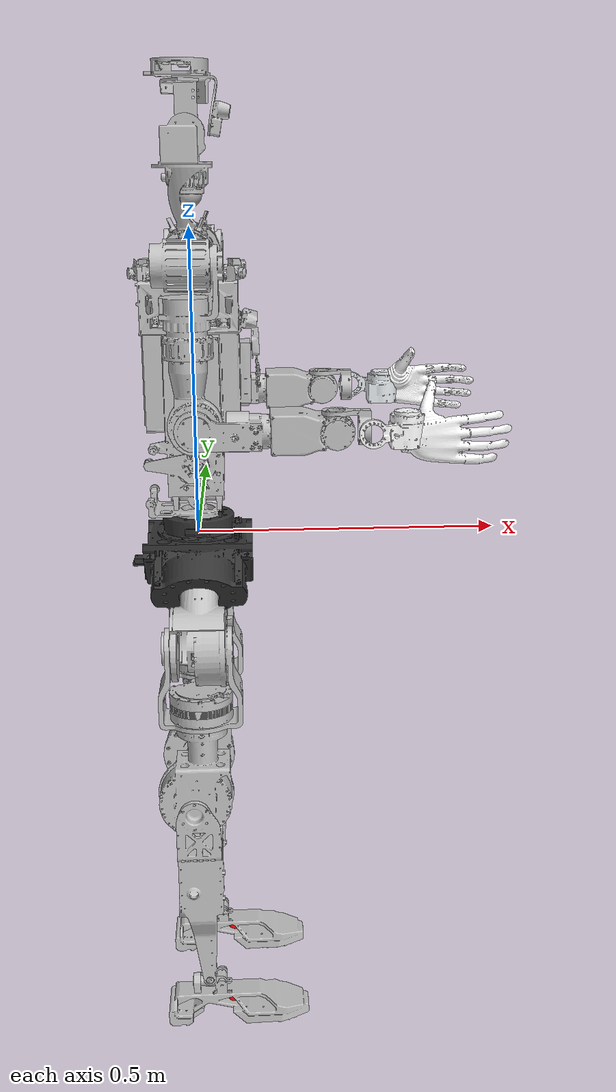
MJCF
<?xml version='1.0' encoding='UTF-8'?>
<mujoco model="v1.1_Whole_u4.0_0304">
  <compiler angle="radian" meshdir="../meshes/" autolimits="true" discardvisual="false"/>
  <default>
    <joint damping="0.5" armature="0.01" frictionloss="0.1"/>
    <geom group="3" contype="1" conaffinity="1"/>
  </default>
  <asset>
    <mesh name="base_link" file="/home/user2/Instinct-mjlab/InstinctMJ/src/instinct_mj/assets/resources/v11/urdf/../meshes/base_link.STL"/>
    <mesh name="left_hip_pitch_link" file="/home/user2/Instinct-mjlab/InstinctMJ/src/instinct_mj/assets/resources/v11/urdf/../meshes/left_hip_pitch_link.STL"/>
    <mesh name="left_hip_roll_link" file="/home/user2/Instinct-mjlab/InstinctMJ/src/instinct_mj/assets/resources/v11/urdf/../meshes/left_hip_roll_link.STL"/>
    <mesh name="left_hip_yaw_link" file="/home/user2/Instinct-mjlab/InstinctMJ/src/instinct_mj/assets/resources/v11/urdf/../meshes/left_hip_yaw_link.STL"/>
    <mesh name="left_knee_link" file="/home/user2/Instinct-mjlab/InstinctMJ/src/instinct_mj/assets/resources/v11/urdf/../meshes/left_knee_link.STL"/>
    <mesh name="left_ankle_pitch_link" file="/home/user2/Instinct-mjlab/InstinctMJ/src/instinct_mj/assets/resources/v11/urdf/../meshes/left_ankle_pitch_link.STL"/>
    <mesh name="left_ankle_roll_link" file="/home/user2/Instinct-mjlab/InstinctMJ/src/instinct_mj/assets/resources/v11/urdf/../meshes/left_ankle_roll_link.STL"/>
    <mesh name="right_hip_pitch_link" file="/home/user2/Instinct-mjlab/InstinctMJ/src/instinct_mj/assets/resources/v11/urdf/../meshes/right_hip_pitch_link.STL"/>
    <mesh name="right_hip_roll_link" file="/home/user2/Instinct-mjlab/InstinctMJ/src/instinct_mj/assets/resources/v11/urdf/../meshes/right_hip_roll_link.STL"/>
    <mesh name="right_hip_yaw_link" file="/home/user2/Instinct-mjlab/InstinctMJ/src/instinct_mj/assets/resources/v11/urdf/../meshes/right_hip_yaw_link.STL"/>
    <mesh name="right_knee_link" file="/home/user2/Instinct-mjlab/InstinctMJ/src/instinct_mj/assets/resources/v11/urdf/../meshes/right_knee_link.STL"/>
    <mesh name="right_ankle_pitch_link" file="/home/user2/Instinct-mjlab/InstinctMJ/src/instinct_mj/assets/resources/v11/urdf/../meshes/right_ankle_pitch_link.STL"/>
    <mesh name="right_ankle_roll_link" file="/home/user2/Instinct-mjlab/InstinctMJ/src/instinct_mj/assets/resources/v11/urdf/../meshes/right_ankle_roll_link.STL"/>
    <mesh name="waist_yaw_link" file="/home/user2/Instinct-mjlab/InstinctMJ/src/instinct_mj/assets/resources/v11/urdf/../meshes/waist_yaw_link.STL"/>
    <mesh name="waist_roll_link" file="/home/user2/Instinct-mjlab/InstinctMJ/src/instinct_mj/assets/resources/v11/urdf/../meshes/waist_roll_link.STL"/>
    <mesh name="waist_pitch_link" file="/home/user2/Instinct-mjlab/InstinctMJ/src/instinct_mj/assets/resources/v11/urdf/../meshes/waist_pitch_link.STL"/>
    <mesh name="head_yaw_link" file="/home/user2/Instinct-mjlab/InstinctMJ/src/instinct_mj/assets/resources/v11/urdf/../meshes/head_yaw_link.STL"/>
    <mesh name="head_pitch_link" file="/home/user2/Instinct-mjlab/InstinctMJ/src/instinct_mj/assets/resources/v11/urdf/../meshes/head_pitch_link.STL"/>
    <mesh name="left_shoulder_pitch_link" file="/home/user2/Instinct-mjlab/InstinctMJ/src/instinct_mj/assets/resources/v11/urdf/../meshes/left_shoulder_pitch_link.STL"/>
    <mesh name="left_shoulder_roll_link" file="/home/user2/Instinct-mjlab/InstinctMJ/src/instinct_mj/assets/resources/v11/urdf/../meshes/left_shoulder_roll_link.STL"/>
    <mesh name="left_shoulder_yaw_link" file="/home/user2/Instinct-mjlab/InstinctMJ/src/instinct_mj/assets/resources/v11/urdf/../meshes/left_shoulder_yaw_link.STL"/>
    <mesh name="left_elbow_link" file="/home/user2/Instinct-mjlab/InstinctMJ/src/instinct_mj/assets/resources/v11/urdf/../meshes/left_elbow_link.STL"/>
    <mesh name="left_wrist_roll_link" file="/home/user2/Instinct-mjlab/InstinctMJ/src/instinct_mj/assets/resources/v11/urdf/../meshes/left_wrist_roll_link.STL"/>
    <mesh name="left_wrist_yaw_link" file="/home/user2/Instinct-mjlab/InstinctMJ/src/instinct_mj/assets/resources/v11/urdf/../meshes/left_wrist_yaw_link.STL"/>
    <mesh name="left_wrist_pitch_link" file="/home/user2/Instinct-mjlab/InstinctMJ/src/instinct_mj/assets/resources/v11/urdf/../meshes/left_wrist_pitch_link.STL"/>
    <mesh name="left_hand_link" file="/home/user2/Instinct-mjlab/InstinctMJ/src/instinct_mj/assets/resources/v11/urdf/../meshes/left_hand_link.STL"/>
    <mesh name="right_shoulder_pitch_link" file="/home/user2/Instinct-mjlab/InstinctMJ/src/instinct_mj/assets/resources/v11/urdf/../meshes/right_shoulder_pitch_link.STL"/>
    <mesh name="right_shoulder_roll_link" file="/home/user2/Instinct-mjlab/InstinctMJ/src/instinct_mj/assets/resources/v11/urdf/../meshes/right_shoulder_roll_link.STL"/>
    <mesh name="right_shoulder_yaw_link" file="/home/user2/Instinct-mjlab/InstinctMJ/src/instinct_mj/assets/resources/v11/urdf/../meshes/right_shoulder_yaw_link.STL"/>
    <mesh name="right_elbow_link" file="/home/user2/Instinct-mjlab/InstinctMJ/src/instinct_mj/assets/resources/v11/urdf/../meshes/right_elbow_link.STL"/>
    <mesh name="right_wrist_roll_link" file="/home/user2/Instinct-mjlab/InstinctMJ/src/instinct_mj/assets/resources/v11/urdf/../meshes/right_wrist_roll_link.STL"/>
    <mesh name="right_wrist_yaw_link" file="/home/user2/Instinct-mjlab/InstinctMJ/src/instinct_mj/assets/resources/v11/urdf/../meshes/right_wrist_yaw_link.STL"/>
    <mesh name="right_wrist_pitch_link" file="/home/user2/Instinct-mjlab/InstinctMJ/src/instinct_mj/assets/resources/v11/urdf/../meshes/right_wrist_pitch_link.STL"/>
    <mesh name="right_hand_link" file="/home/user2/Instinct-mjlab/InstinctMJ/src/instinct_mj/assets/resources/v11/urdf/../meshes/right_hand_link.STL"/>
  </asset>
  <worldbody>
    <body name="base_link">
      <inertial pos="-0.000155 2.8e-05 -0.049334" quat="0.505449 0.504747 -0.495115 0.494584" mass="5.77559" diaginertia="0.0309649 0.0287201 0.019774"/>
      <joint name="floating_base_joint" type="free" limited="false" actuatorfrclimited="false"/>
      <geom type="mesh" contype="0" conaffinity="0" group="1" density="0" rgba="0.2 0.2 0.2 1" mesh="base_link"/>
      <geom size="0.085" pos="0 0 -0.07" rgba="0.2 0.2 0.2 1"/>
      <site name="imu" size="0.01" pos="0 0 0"/>
      <!-- harness cameras (body-fixed, follow robot) -->
      <camera name="front" pos="3 0 0.2" xyaxes="0 1 0 0 0 1" />
      <camera name="side"  pos="0 3 0.2" xyaxes="-1 0 0 0 0 1" />
      <camera name="top"   pos="0 0 4.2" xyaxes="1 0 0 0 1 0" />
      <body name="left_hip_pitch_link" pos="0 0.11619 -0.12455" quat="0.923879 -0.382684 0 0">
        <inertial pos="0.003459 0.021151 -0.028205" quat="0.490041 0.865639 0.102286 0.00818255" mass="2.31159" diaginertia="0.00539473 0.00466954 0.00409573"/>
        <joint name="left_hip_pitch_joint" pos="0 0 0" axis="0 1 0" range="-2.618 2.618" actuatorfrcrange="-150 150"/>
        <geom type="mesh" contype="0" conaffinity="0" group="1" density="0" rgba="0.75294 0.75294 0.75294 1" mesh="left_hip_pitch_link"/>
        <body name="left_hip_roll_link" pos="-0.001 0.03 -0.03" quat="0.923879 0.382684 0 0">
          <inertial pos="0.001718 2.7e-05 -0.084185" quat="0.302919 0.638937 0.638937 0.302919" mass="1.4811" diaginertia="0.004583 0.00342042 0.00297758"/>
          <joint name="left_hip_roll_joint" pos="0 0 0" axis="1 0 0" range="-0.7854 2.3563" actuatorfrcrange="-150 150"/>
          <geom type="mesh" contype="0" conaffinity="0" group="1" density="0" rgba="0.752941 0.752941 0.752941 1" mesh="left_hip_roll_link"/>
          <body name="left_hip_yaw_link" pos="0 0 -0.13">
            <inertial pos="-0.010515 -0.008686 -0.118125" quat="0.768791 -0.00106581 -0.0794954 0.634539" mass="2.40368" diaginertia="0.0105257 0.00964942 0.00307093"/>
            <joint name="left_hip_yaw_joint" pos="0 0 0" axis="0 0 1" range="-2.0944 2.0944" actuatorfrcrange="-90 90"/>
            <geom type="mesh" contype="0" conaffinity="0" group="1" density="0" rgba="0.752941 0.752941 0.752941 1" mesh="left_hip_yaw_link"/>
            <geom size="0.05 0.05" pos="0 0 0.05" type="capsule" rgba="0.752941 0.752941 0.752941 1"/>
            <body name="left_knee_link" pos="-0.015 0 -0.151">
              <inertial pos="0.004171 0.00067 -0.136787" quat="0.999909 0.00620724 0.0106815 -0.00541722" mass="1.79438" diaginertia="0.0104609 0.00988819 0.00191487"/>
              <joint name="left_knee_joint" pos="0 0 0" axis="0 1 0" range="-0.0873 2.0944" actuatorfrcrange="-150 150"/>
              <geom type="mesh" contype="0" conaffinity="0" group="1" density="0" rgba="0.752941 0.752941 0.752941 1" mesh="left_knee_link"/>
              <geom size="0.04 0.125" pos="0 0 -0.15" type="capsule" rgba="0.752941 0.752941 0.752941 1"/>
              <body name="left_ankle_pitch_link" pos="0.015 0.0005 -0.339">
                <inertial pos="-0.004439 8e-06 -0.007488" quat="0 0.83147 0 0.55557" mass="0.089167" diaginertia="2.22426e-05 1.9e-05 1.37574e-05"/>
                <joint name="left_ankle_pitch_joint" pos="0 0 0" axis="0 1 0" range="-0.9599 0.2618" actuatorfrcrange="-54 54"/>
                <geom type="mesh" contype="0" conaffinity="0" group="1" density="0" rgba="0.752941 0.752941 0.752941 1" mesh="left_ankle_pitch_link"/>
                <body name="left_ankle_roll_link" pos="0 0 -0.015">
                  <inertial pos="0.044355 0 -0.035553" quat="0 0.678893 0 0.734237" mass="0.881546" diaginertia="0.0045374 0.004457 0.000548603"/>
                  <joint name="left_ankle_roll_joint" pos="0 0 0" axis="1 0 0" range="-0.1745 0.1745" actuatorfrcrange="-54 54"/>
                  <geom type="mesh" contype="0" conaffinity="0" group="1" density="0" rgba="0.752941 0.752941 0.752941 1" mesh="left_ankle_roll_link"/>
                  <geom name="left_foot1_collision" size="0.012 0.08" pos="0.04 -0.03 -0.055" quat="0.710914 0 0.703279 0" type="capsule" priority="1" friction="0.6 0.005 0.0001" rgba="0.2 0.2 0.2 1"/>
                  <geom name="left_foot2_collision" size="0.012 0.1" pos="0.05 -0.02 -0.055" quat="0.710914 0 0.703279 0" type="capsule" priority="1" friction="0.6 0.005 0.0001" rgba="0.2 0.2 0.2 1"/>
                  <geom name="left_foot3_collision" size="0.012 0.11" pos="0.054 -0.01 -0.055" quat="0.710914 0 0.703279 0" type="capsule" priority="1" friction="0.6 0.005 0.0001" rgba="0.2 0.2 0.2 1"/>
                  <geom name="left_foot4_collision" size="0.012 0.11" pos="0.054 0 -0.055" quat="0.710914 0 0.703279 0" type="capsule" priority="1" friction="0.6 0.005 0.0001" rgba="0.2 0.2 0.2 1"/>
                  <geom name="left_foot5_collision" size="0.012 0.11" pos="0.054 0.01 -0.055" quat="0.710914 0 0.703279 0" type="capsule" priority="1" friction="0.6 0.005 0.0001" rgba="0.2 0.2 0.2 1"/>
                  <geom name="left_foot6_collision" size="0.012 0.1" pos="0.05 0.02 -0.055" quat="0.710914 0 0.703279 0" type="capsule" priority="1" friction="0.6 0.005 0.0001" rgba="0.2 0.2 0.2 1"/>
                  <geom name="left_foot7_collision" size="0.012 0.08" pos="0.04 0.03 -0.055" quat="0.710914 0 0.703279 0" type="capsule" priority="1" friction="0.6 0.005 0.0001" rgba="0.2 0.2 0.2 1"/>
                  <body name="LL_FOOT" pos="0.04 0 -0.037">
                    <inertial pos="0 0 0" mass="1e-09" diaginertia="0 0 0"/>
                  </body>
                  <site name="left_foot" pos="0.04 0 -0.037" size="0.01" rgba="1 0 0 1"/>
                </body>
              </body>
            </body>
          </body>
        </body>
      </body>
      <body name="right_hip_pitch_link" pos="0 -0.11619 -0.12455" quat="0.923879 0.382684 0 0">
        <inertial pos="0.00371 -0.021009 -0.028285" quat="0.871018 0.48043 -0.00149133 -0.102528" mass="2.32505" diaginertia="0.00543281 0.00471116 0.00414603"/>
        <joint name="right_hip_pitch_joint" pos="0 0 0" axis="0 1 0" range="-2.618 2.618" actuatorfrcrange="-150 150"/>
        <geom type="mesh" contype="0" conaffinity="0" group="1" density="0" rgba="0.752941 0.752941 0.752941 1" mesh="right_hip_pitch_link"/>
        <body name="right_hip_roll_link" pos="-0.001 -0.03 -0.03" quat="0.923879 -0.382684 0 0">
          <inertial pos="0.001726 -4e-06 -0.084185" quat="0.308158 0.639783 0.633678 0.306869" mass="1.4811" diaginertia="0.0045961 0.00341524 0.00296965"/>
          <joint name="right_hip_roll_joint" pos="0 0 0" axis="1 0 0" range="-2.3563 0.7854" actuatorfrcrange="-150 150"/>
          <geom type="mesh" contype="0" conaffinity="0" group="1" density="0" rgba="0.752941 0.752941 0.752941 1" mesh="right_hip_roll_link"/>
          <body name="right_hip_yaw_link" pos="0 0 -0.13">
            <inertial pos="-0.010501 0.008686 -0.118134" quat="0.634352 -0.0794556 -0.00101217 0.768949" mass="2.40369" diaginertia="0.0105269 0.00964795 0.00307314"/>
            <joint name="right_hip_yaw_joint" pos="0 0 0" axis="0 0 1" range="-2.0944 2.0944" actuatorfrcrange="-150 150"/>
            <geom type="mesh" contype="0" conaffinity="0" group="1" density="0" rgba="0.752941 0.752941 0.752941 1" mesh="right_hip_yaw_link"/>
            <geom size="0.05 0.05" pos="0 0 0.05" type="capsule" rgba="0.752941 0.752941 0.752941 1"/>
            <body name="right_knee_link" pos="-0.015 0 -0.151">
              <inertial pos="0.004171 -0.000665 -0.13679" quat="0.999908 -0.00626714 0.0106807 0.00545526" mass="1.79439" diaginertia="0.0104609 0.00989021 0.00191385"/>
              <joint name="right_knee_joint" pos="0 0 0" axis="0 1 0" range="-0.0873 2.0944" actuatorfrcrange="-150 150"/>
              <geom type="mesh" contype="0" conaffinity="0" group="1" density="0" rgba="0.752941 0.752941 0.752941 1" mesh="right_knee_link"/>
              <geom size="0.04 0.125" pos="0 0 -0.15" type="capsule" rgba="0.752941 0.752941 0.752941 1"/>
              <body name="right_ankle_pitch_link" pos="0.015 -0.0005 -0.339">
                <inertial pos="-0.004439 -8e-06 -0.007488" quat="0 0.83147 0 0.55557" mass="0.089167" diaginertia="2.22426e-05 1.9e-05 1.37574e-05"/>
                <joint name="right_ankle_pitch_joint" pos="0 0 0" axis="0 1 0" range="-0.9599 0.2618" actuatorfrcrange="-54 54"/>
                <geom type="mesh" contype="0" conaffinity="0" group="1" density="0" rgba="0.752941 0.752941 0.752941 1" mesh="right_ankle_pitch_link"/>
                <body name="right_ankle_roll_link" pos="0 0 -0.015">
                  <inertial pos="0.044597 0 -0.035822" quat="0 0.679635 0 0.733551" mass="0.874931" diaginertia="0.00452915 0.004442 0.000540846"/>
                  <joint name="right_ankle_roll_joint" pos="0 0 0" axis="1 0 0" range="-0.1745 0.1745" actuatorfrcrange="-54 54"/>
                  <geom type="mesh" contype="0" conaffinity="0" group="1" density="0" rgba="0.752941 0.752941 0.752941 1" mesh="right_ankle_roll_link"/>
                  <geom name="right_foot1_collision" size="0.012 0.08" pos="0.04 -0.03 -0.055" quat="0.710914 0 0.703279 0" type="capsule" priority="1" friction="0.6 0.005 0.0001" rgba="0.2 0.2 0.2 1"/>
                  <geom name="right_foot2_collision" size="0.012 0.1" pos="0.05 -0.02 -0.055" quat="0.710914 0 0.703279 0" type="capsule" priority="1" friction="0.6 0.005 0.0001" rgba="0.2 0.2 0.2 1"/>
                  <geom name="right_foot3_collision" size="0.012 0.11" pos="0.054 -0.01 -0.055" quat="0.710914 0 0.703279 0" type="capsule" priority="1" friction="0.6 0.005 0.0001" rgba="0.2 0.2 0.2 1"/>
                  <geom name="right_foot4_collision" size="0.012 0.11" pos="0.054 0 -0.055" quat="0.710914 0 0.703279 0" type="capsule" priority="1" friction="0.6 0.005 0.0001" rgba="0.2 0.2 0.2 1"/>
                  <geom name="right_foot5_collision" size="0.012 0.11" pos="0.054 0.01 -0.055" quat="0.710914 0 0.703279 0" type="capsule" priority="1" friction="0.6 0.005 0.0001" rgba="0.2 0.2 0.2 1"/>
                  <geom name="right_foot6_collision" size="0.012 0.1" pos="0.05 0.02 -0.055" quat="0.710914 0 0.703279 0" type="capsule" priority="1" friction="0.6 0.005 0.0001" rgba="0.2 0.2 0.2 1"/>
                  <geom name="right_foot7_collision" size="0.012 0.08" pos="0.04 0.03 -0.055" quat="0.710914 0 0.703279 0" type="capsule" priority="1" friction="0.6 0.005 0.0001" rgba="0.2 0.2 0.2 1"/>
                  <body name="LR_FOOT" pos="0.04 0 -0.037">
                    <inertial pos="0 0 0" mass="1e-09" diaginertia="0 0 0"/>
                  </body>
                  <site name="right_foot" pos="0.04 0 -0.037" size="0.01" rgba="1 0 0 1"/>
                </body>
              </body>
            </body>
          </body>
        </body>
      </body>
      <body name="waist_yaw_link">
        <inertial pos="-0.023393 1e-06 0.041219" quat="0 0.677318 0 0.73569" mass="0.2361" diaginertia="0.000486235 0.000381 0.000157765"/>
        <joint name="waist_yaw_joint" pos="0 0 0" axis="0 0 1" range="-1.5708 1.5708" actuatorfrcrange="-90 90"/>
        <geom type="mesh" contype="0" conaffinity="0" group="1" density="0" rgba="0.752941 0.752941 0.752941 1" mesh="waist_yaw_link"/>
        <body name="waist_roll_link" pos="0 0 0.0615">
          <inertial pos="0 0 -1.7e-05" quat="0 0.707107 0 0.707107" mass="0.044979" diaginertia="1.8e-05 1.3e-05 6e-06"/>
          <joint name="waist_roll_joint" pos="0 0 0" axis="1 0 0" range="-0.1745 0.1745" actuatorfrcrange="-90 90"/>
          <geom type="mesh" contype="0" conaffinity="0" group="1" density="0" rgba="0.752941 0.752941 0.752941 1" mesh="waist_roll_link"/>
          <body name="waist_pitch_link">
            <inertial pos="-0.006743 0.000129 0.239122" quat="0.99984 -0.00138923 -0.0177964 -0.000710682" mass="13.9753" diaginertia="0.216592 0.185444 0.0781879"/>
            <joint name="waist_pitch_joint" pos="0 0 0" axis="0 1 0" range="-0.3491 0.6981" actuatorfrcrange="-90 90"/>
            <geom type="mesh" contype="0" conaffinity="0" group="1" density="0" rgba="0.752941 0.752941 0.752941 1" mesh="waist_pitch_link"/>
            <geom size="0.08 0.0375" pos="0.005 0 0.35" quat="0.707105 0.707108 0 0" type="capsule" rgba="0.752941 0.752941 0.752941 1"/>
            <geom size="0.08 0.028" pos="0.005 0 0.2" quat="0.707105 0.707108 0 0" type="capsule" rgba="0.752941 0.752941 0.752941 1"/>
            <geom size="0.06 0.02" pos="0.005 0 0.06" quat="0.707105 0.707108 0 0" type="capsule" rgba="0.752941 0.752941 0.752941 1"/>
            <body name="head_yaw_link" pos="0 0 0.4375">
              <inertial pos="-0.001469 -0.001706 0.101301" quat="0.998467 -0.00882478 -0.00428167 0.0544812" mass="0.879937" diaginertia="0.00201828 0.00183516 0.00071856"/>
              <geom type="mesh" contype="0" conaffinity="0" group="1" density="0" rgba="0.752941 0.752941 0.752941 1" mesh="head_yaw_link"/>
              <geom size="0.07" pos="0 0 0.15" rgba="0.752941 0.752941 0.752941 1"/>
              <body name="head_pitch_link" pos="0 0 0.142">
                <inertial pos="0.024719 0.005163 0.054194" quat="0.275074 0.367039 0.169088 0.872368" mass="0.311827" diaginertia="0.000742282 0.000655865 0.000263853"/>
                <geom type="mesh" contype="0" conaffinity="0" group="1" density="0" rgba="0.752941 0.752941 0.752941 1" mesh="head_pitch_link"/>
              </body>
            </body>
            <body name="left_shoulder_pitch_link" pos="0 0.1446 0.3935">
              <inertial pos="0.005441 0.044691 -9e-06" quat="0.435162 0.557345 -0.435162 0.557345" mass="0.82606" diaginertia="0.000626 0.0006 0.000583"/>
              <joint name="left_shoulder_pitch_joint" pos="0 0 0" axis="0 1 0" range="-2.618 2.618" actuatorfrcrange="-80 80"/>
              <geom type="mesh" contype="0" conaffinity="0" group="1" density="0" rgba="0.752941 0.752941 0.752941 1" mesh="left_shoulder_pitch_link"/>
              <body name="left_shoulder_roll_link" pos="0 0.047 0">
                <inertial pos="0.004638 5.8e-05 -0.095341" quat="0.635553 -0.168427 -0.145122 0.739354" mass="0.919601" diaginertia="0.00159214 0.00158606 0.000733801"/>
                <joint name="left_shoulder_roll_joint" pos="0 0 0" axis="1 0 0" range="-0.0873 3.2289" actuatorfrcrange="-80 80"/>
                <geom type="mesh" contype="0" conaffinity="0" group="1" density="0" rgba="0.752941 0.752941 0.752941 1" mesh="left_shoulder_roll_link"/>
                <body name="left_shoulder_yaw_link" pos="-0.00072034 0 -0.1346">
                  <inertial pos="0.006217 0.007462 -0.090852" quat="0.819073 -0.0155607 0.0734932 0.56875" mass="1.02565" diaginertia="0.00155801 0.00150183 0.000799156"/>
                  <joint name="left_shoulder_yaw_joint" pos="0 0 0" axis="0 0 1" range="-2.618 2.618" actuatorfrcrange="-80 80"/>
                  <geom type="mesh" contype="0" conaffinity="0" group="1" density="0" rgba="0.752941 0.752941 0.752941 1" mesh="left_shoulder_yaw_link"/>
                  <geom size="0.035 0.075" type="capsule" rgba="0.752941 0.752941 0.752941 1"/>
                  <body name="left_elbow_link" pos="0.0075 0 -0.1019">
                    <inertial pos="0.08001 0.011386 -0.008325" quat="-0.0715389 0.633022 0.285541 0.715983" mass="0.57411" diaginertia="0.000881445 0.000795651 0.000284904"/>
                    <joint name="left_elbow_joint" pos="0 0 0" axis="0 1 0" range="-0.6981 3.3161" actuatorfrcrange="-80 80"/>
                    <geom type="mesh" contype="0" conaffinity="0" group="1" density="0" rgba="0.752941 0.752941 0.752941 1" mesh="left_elbow_link"/>
                    <geom size="0.035 0.075" pos="0.1 0 0" quat="0.707388 0 0.706825 0" type="capsule" rgba="0.752941 0.752941 0.752941 1"/>
                    <body name="left_wrist_roll_link" pos="0.1 0.0019 -0.009">
                      <inertial pos="0.084999 -4.2e-05 -0.005022" quat="0.534353 0.462261 0.462063 0.535986" mass="0.699715" diaginertia="0.001204 0.00112857 0.000441426"/>
                      <joint name="left_wrist_roll_joint" pos="0 0 0" axis="1 0 0" range="-2.618 2.618" actuatorfrcrange="-11.5 11.5"/>
                      <geom type="mesh" contype="0" conaffinity="0" group="1" density="0" rgba="0.752941 0.752941 0.752941 1" mesh="left_wrist_roll_link"/>
                      <body name="left_wrist_yaw_link" pos="0.1135 0 0">
                        <inertial pos="0.051009 0.006165 -0.002321" quat="0.211869 0.806792 0.349015 0.427068" mass="0.404102" diaginertia="0.000221574 0.000202653 0.000134773"/>
                        <joint name="left_wrist_yaw_joint" pos="0 0 0" axis="0 0 1" range="-1.6581 1.5708" actuatorfrcrange="-11.5 11.5"/>
                        <geom type="mesh" contype="0" conaffinity="0" group="1" density="0" rgba="0.752941 0.752941 0.752941 1" mesh="left_wrist_yaw_link"/>
                        <geom size="0.05 0.02" pos="0.09 0 0" quat="0.707388 0 0.706825 0" type="capsule" rgba="0.752941 0.752941 0.752941 1"/>
                        <body name="left_wrist_pitch_link" pos="0.054 0 0">
                          <inertial pos="0.03112 0.014397 0.000457" quat="0.706925 0.706925 -0.0160252 -0.0160252" mass="0.05282" diaginertia="0.000106 0.000106 0.000106"/>
                          <joint name="left_wrist_pitch_joint" pos="0 0 0" axis="0 1 0" range="-1.6581 1.4835" actuatorfrcrange="-11.5 11.5"/>
                          <geom type="mesh" contype="0" conaffinity="0" group="1" density="0" rgba="0.898039 0.917647 0.929412 1" mesh="left_wrist_pitch_link"/>
                          <body name="left_hand_link" pos="0.052 0 0.001">
                            <inertial pos="0.068357 -0.00813 0.010003" quat="0.686409 0.317601 0.557668 0.342022" mass="0.5" diaginertia="0.00154314 0.00114069 0.000539169"/>
                            <geom type="mesh" contype="0" conaffinity="0" group="1" density="0" rgba="1 1 1 1" mesh="left_hand_link"/>
                          </body>
                        </body>
                      </body>
                    </body>
                  </body>
                </body>
              </body>
            </body>
            <body name="right_shoulder_pitch_link" pos="0 -0.1446 0.3935">
              <inertial pos="0.00524 -0.044604 0" quat="0.540044 0.456457 -0.540044 0.456457" mass="0.823511" diaginertia="0.000621 0.000600676 0.000576324"/>
              <joint name="right_shoulder_pitch_joint" pos="0 0 0" axis="0 1 0" range="-2.618 2.618" actuatorfrcrange="-80 80"/>
              <geom type="mesh" contype="0" conaffinity="0" group="1" density="0" rgba="0.752941 0.752941 0.752941 1" mesh="right_shoulder_pitch_link"/>
              <body name="right_shoulder_roll_link" pos="0 -0.047 0">
                <inertial pos="0.004823 -6.6e-05 -0.094934" quat="0.689588 -0.156423 -0.156423 0.689588" mass="0.922881" diaginertia="0.00164 0.00163588 0.000734123"/>
                <joint name="right_shoulder_roll_joint" pos="0 0 0" axis="1 0 0" range="-3.2289 0.0873" actuatorfrcrange="-80 80"/>
                <geom type="mesh" contype="0" conaffinity="0" group="1" density="0" rgba="0.752941 0.752941 0.752941 1" mesh="right_shoulder_roll_link"/>
                <body name="right_shoulder_yaw_link" pos="-0.00072034 0 -0.1346">
                  <inertial pos="0.006215 -0.007444 -0.090877" quat="0.574371 0.0733484 -0.0145216 0.815173" mass="1.0263" diaginertia="0.00155813 0.00150352 0.000800349"/>
                  <joint name="right_shoulder_yaw_joint" pos="0 0 0" axis="0 0 1" range="-2.618 2.618" actuatorfrcrange="-80 80"/>
                  <geom type="mesh" contype="0" conaffinity="0" group="1" density="0" rgba="0.752941 0.752941 0.752941 1" mesh="right_shoulder_yaw_link"/>
                  <geom size="0.035 0.075" type="capsule" rgba="0.752941 0.752941 0.752941 1"/>
                  <body name="right_elbow_link" pos="0.0075 0 -0.1019">
                    <inertial pos="0.07929 -0.011745 -0.008251" quat="0.0594802 0.629275 -0.29337 0.717223" mass="0.579271" diaginertia="0.000926527 0.000837115 0.000286359"/>
                    <joint name="right_elbow_joint" pos="0 0 0" axis="0 1 0" range="-0.6981 3.3161" actuatorfrcrange="-80 80"/>
                    <geom type="mesh" contype="0" conaffinity="0" group="1" density="0" rgba="0.752941 0.752941 0.752941 1" mesh="right_elbow_link"/>
                    <geom size="0.035 0.075" pos="0.1 0 0" quat="0.707388 0 0.706825 0" type="capsule" rgba="0.752941 0.752941 0.752941 1"/>
                    <body name="right_wrist_roll_link" pos="0.1 -0.0019 -0.009">
                      <inertial pos="0.085003 4.9e-05 -0.00502" quat="0.536357 0.461633 0.461831 0.534722" mass="0.700041" diaginertia="0.001205 0.00112888 0.000442115"/>
                      <joint name="right_wrist_roll_joint" pos="0 0 0" axis="1 0 0" range="-2.618 2.618" actuatorfrcrange="-11.5 11.5"/>
                      <geom type="mesh" contype="0" conaffinity="0" group="1" density="0" rgba="0.752941 0.752941 0.752941 1" mesh="right_wrist_roll_link"/>
                      <body name="right_wrist_yaw_link" pos="0.1135 0 0">
                        <inertial pos="0.051094 -0.006168 -0.002269" quat="0.421711 0.367386 0.800912 0.213842" mass="0.404099" diaginertia="0.000219454 0.000201397 0.000135149"/>
                        <joint name="right_wrist_yaw_joint" pos="0 0 0" axis="0 0 1" range="-1.5708 1.6581" actuatorfrcrange="-11.5 11.5"/>
                        <geom pos="0 0 0" type="mesh" contype="0" conaffinity="0" group="1" density="0" rgba="0.752941 0.752941 0.752941 1" mesh="right_wrist_yaw_link"/>
                        <geom size="0.05 0.02" pos="0.09 0 0" quat="0.707388 0 0.706825 0" type="capsule" rgba="0.752941 0.752941 0.752941 1"/>
                        <body name="right_wrist_pitch_link" pos="0.054 0 0">
                          <inertial pos="0.03112 -0.014397 0.000457" quat="0.230106 0.668619 -0.230106 0.668619" mass="0.05282" diaginertia="3.8e-05 3.78078e-05 1.71922e-05"/>
                          <joint name="right_wrist_pitch_joint" pos="0 0 0" axis="0 1 0" range="-1.6581 1.4835" actuatorfrcrange="-11.5 11.5"/>
                          <geom type="mesh" contype="0" conaffinity="0" group="1" density="0" rgba="1 1 1 1" mesh="right_wrist_pitch_link"/>
                          <body name="right_hand_link" pos="0.054287 0 -0.01594">
                            <inertial pos="0.066084 0.008134 0.026947" quat="0.342022 0.557668 0.317601 0.686409" mass="0.5" diaginertia="0.00154314 0.00114069 0.000539169"/>
                            <geom type="mesh" contype="0" conaffinity="0" group="1" density="0" rgba="1 1 1 1" mesh="right_hand_link"/>
                          </body>
                        </body>
                      </body>
                    </body>
                  </body>
                </body>
              </body>
            </body>
          </body>
        </body>
      </body>
      <body name="imu_link" pos="-0.09835 0 -0.052"/>
    </body>
  </worldbody>
  <contact>
    <exclude body1="left_elbow_link" body2="left_wrist_pitch_link"/>
    <exclude body1="right_elbow_link" body2="right_wrist_pitch_link"/>
    <exclude body1="base_link" body2="left_hip_roll_link"/>
    <exclude body1="base_link" body2="right_hip_roll_link"/>
  </contact>
  <sensor>
    <framequat name="orientation" objtype="site" objname="imu"/>
    <framepos name="position" objtype="site" objname="imu"/>
    <gyro name="imu_ang_vel" site="imu"/>
    <velocimeter name="imu_lin_vel" site="imu"/>
    <accelerometer name="imu_lin_acc" site="imu"/>
    <subtreeangmom name="root_angmom" body="base_link"/>
  </sensor>
</mujoco>
